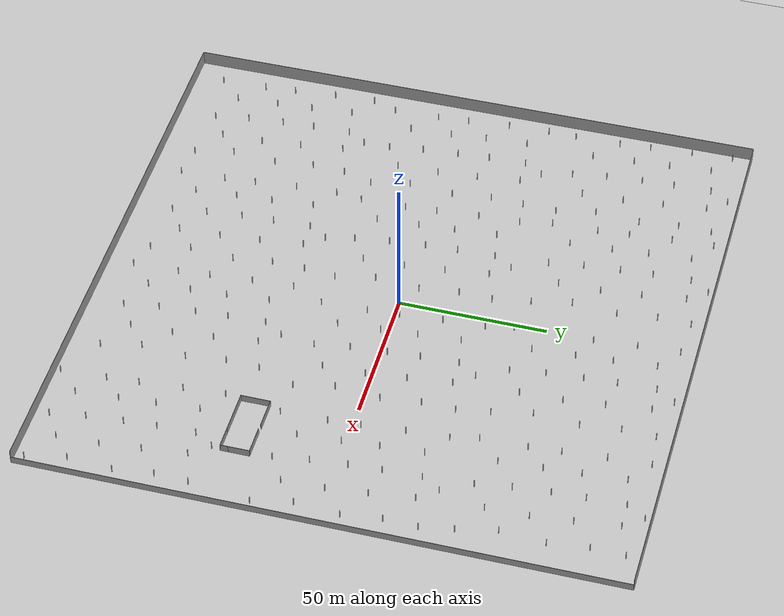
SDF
<sdf version="1.6">
 <world name="default">
  <light name="sun" type="directional">
   <pose>0 0 10 0 -0 0</pose>
   <diffuse>0.8 0.8 0.8 1</diffuse>
   <specular>0.2 0.2 0.2 1</specular>
   <attenuation>
    <range>1000</range>
    <constant>0.9</constant>
    <linear>0.01</linear>
    <quadratic>0.001</quadratic>
   </attenuation>
   <direction>-0.5 0.1 -0.9</direction>
  </light>
  <model name="ground_plane">
   <static>1</static>
   <link name="link">
    <collision name="collision">
     <geometry><plane><normal>0 0 1</normal><size>100 100</size></plane></geometry>
     <surface><friction><ode><mu>100</mu><mu2>50</mu2></ode></friction></surface>
    </collision>
    <visual name="visual">
     <cast_shadows>0</cast_shadows>
     <geometry><plane><normal>0 0 1</normal><size>100 100</size></plane></geometry>
     <material>
      <script><uri>file://media/materials/scripts/gazebo.material</uri><name>Gazebo/Grey</name></script>
     </material>
    </visual>
   </link>
  </model>
  <gravity>0 0 -9.8</gravity>
  <magnetic_field>6e-06 2.3e-05 -4.2e-05</magnetic_field>
  <atmosphere type="adiabatic"/>
  <physics name="default_physics" default="0" type="ode">
   <max_step_size>0.001</max_step_size>
   <real_time_factor>1</real_time_factor>
   <real_time_update_rate>1000</real_time_update_rate>
  </physics>
  <scene><ambient>0.4 0.4 0.4 1</ambient><background>0.7 0.7 0.7 1</background><shadows>1</shadows></scene>
  <audio><device>default</device></audio>
  <spherical_coordinates>
   <surface_model>EARTH_WGS84</surface_model>
   <latitude_deg>0</latitude_deg>
   <longitude_deg>0</longitude_deg>
   <elevation>0</elevation>
   <heading_deg>0</heading_deg>
  </spherical_coordinates>
  <model name="new_200">
   <link name="Wall_0">
    <pose>0 -100 0 0 -0 0</pose>
    <visual name="Wall_0_Visual">
     <pose>0 0 2.5 0 -0 0</pose>
     <geometry><box><size>200.15 0.15 5</size></box></geometry>
     <material>
      <script><uri>file://media/materials/scripts/gazebo.material</uri><name>Gazebo/Grey</name></script>
      <ambient>1 1 1 1</ambient>
     </material>
     <meta><layer>0</layer></meta>
    </visual>
    <collision name="Wall_0_Collision">
     <pose>0 0 2.5 0 -0 0</pose>
     <geometry><box><size>200.15 0.15 5</size></box></geometry>
     <surface>
      <friction>
       <ode><mu>1</mu><mu2>1</mu2><fdir1>0 0 0</fdir1><slip1>0</slip1><slip2>0</slip2></ode>
       <torsional>
        <coefficient>1</coefficient>
        <patch_radius>0</patch_radius>
        <surface_radius>0</surface_radius>
        <use_patch_radius>1</use_patch_radius>
        <ode><slip>0</slip></ode>
       </torsional>
      </friction>
      <bounce><restitution_coefficient>0</restitution_coefficient><threshold>1e+06</threshold></bounce>
      <contact>
       <collide_without_contact>0</collide_without_contact>
       <collide_without_contact_bitmask>1</collide_without_contact_bitmask>
       <collide_bitmask>1</collide_bitmask>
       <ode>
        <soft_cfm>0</soft_cfm>
        <soft_erp>0.2</soft_erp>
        <kp>1e+13</kp>
        <kd>1</kd>
        <max_vel>0.01</max_vel>
        <min_depth>0</min_depth>
       </ode>
       <bullet>
        <split_impulse>1</split_impulse>
        <split_impulse_penetration_threshold>-0.01</split_impulse_penetration_threshold>
        <soft_cfm>0</soft_cfm>
        <soft_erp>0.2</soft_erp>
        <kp>1e+13</kp>
        <kd>1</kd>
       </bullet>
      </contact>
     </surface>
    </collision>
   </link>
   <link name="Wall_2">
    <pose>-100 0 0 0 -0 1.5708</pose>
    <visual name="Wall_2_Visual">
     <pose>0 0 2.5 0 -0 0</pose>
     <geometry><box><size>200.15 0.15 5</size></box></geometry>
     <material>
      <script><uri>file://media/materials/scripts/gazebo.material</uri><name>Gazebo/Grey</name></script>
      <ambient>1 1 1 1</ambient>
     </material>
     <meta><layer>0</layer></meta>
    </visual>
    <collision name="Wall_2_Collision">
     <pose>0 0 2.5 0 -0 0</pose>
     <geometry><box><size>200.15 0.15 5</size></box></geometry>
     <surface>
      <friction>
       <ode><mu>1</mu><mu2>1</mu2><fdir1>0 0 0</fdir1><slip1>0</slip1><slip2>0</slip2></ode>
       <torsional>
        <coefficient>1</coefficient>
        <patch_radius>0</patch_radius>
        <surface_radius>0</surface_radius>
        <use_patch_radius>1</use_patch_radius>
        <ode><slip>0</slip></ode>
       </torsional>
      </friction>
      <bounce><restitution_coefficient>0</restitution_coefficient><threshold>1e+06</threshold></bounce>
      <contact>
       <collide_without_contact>0</collide_without_contact>
       <collide_without_contact_bitmask>1</collide_without_contact_bitmask>
       <collide_bitmask>1</collide_bitmask>
       <ode>
        <soft_cfm>0</soft_cfm>
        <soft_erp>0.2</soft_erp>
        <kp>1e+13</kp>
        <kd>1</kd>
        <max_vel>0.01</max_vel>
        <min_depth>0</min_depth>
       </ode>
       <bullet>
        <split_impulse>1</split_impulse>
        <split_impulse_penetration_threshold>-0.01</split_impulse_penetration_threshold>
        <soft_cfm>0</soft_cfm>
        <soft_erp>0.2</soft_erp>
        <kp>1e+13</kp>
        <kd>1</kd>
       </bullet>
      </contact>
     </surface>
    </collision>
   </link>
   <link name="Wall_4">
    <pose>0 100 0 0 -0 0</pose>
    <visual name="Wall_4_Visual">
     <pose>0 0 2.5 0 -0 0</pose>
     <geometry><box><size>200.15 0.15 5</size></box></geometry>
     <material>
      <script><uri>file://media/materials/scripts/gazebo.material</uri><name>Gazebo/Grey</name></script>
      <ambient>1 1 1 1</ambient>
     </material>
     <meta><layer>0</layer></meta>
    </visual>
    <collision name="Wall_4_Collision">
     <pose>0 0 2.5 0 -0 0</pose>
     <geometry><box><size>200.15 0.15 5</size></box></geometry>
     <surface>
      <friction>
       <ode><mu>1</mu><mu2>1</mu2><fdir1>0 0 0</fdir1><slip1>0</slip1><slip2>0</slip2></ode>
       <torsional>
        <coefficient>1</coefficient>
        <patch_radius>0</patch_radius>
        <surface_radius>0</surface_radius>
        <use_patch_radius>1</use_patch_radius>
        <ode><slip>0</slip></ode>
       </torsional>
      </friction>
      <bounce><restitution_coefficient>0</restitution_coefficient><threshold>1e+06</threshold></bounce>
      <contact>
       <collide_without_contact>0</collide_without_contact>
       <collide_without_contact_bitmask>1</collide_without_contact_bitmask>
       <collide_bitmask>1</collide_bitmask>
       <ode>
        <soft_cfm>0</soft_cfm>
        <soft_erp>0.2</soft_erp>
        <kp>1e+13</kp>
        <kd>1</kd>
        <max_vel>0.01</max_vel>
        <min_depth>0</min_depth>
       </ode>
       <bullet>
        <split_impulse>1</split_impulse>
        <split_impulse_penetration_threshold>-0.01</split_impulse_penetration_threshold>
        <soft_cfm>0</soft_cfm>
        <soft_erp>0.2</soft_erp>
        <kp>1e+13</kp>
        <kd>1</kd>
       </bullet>
      </contact>
     </surface>
    </collision>
   </link>
   <link name="Wall_6">
    <pose>100 0 0 0 -0 1.5708</pose>
    <visual name="Wall_6_Visual">
     <pose>0 0 1.25 0 -0 0</pose>
     <geometry><box><size>200.15 0.15 2.5</size></box></geometry>
     <material>
      <script><uri>file://media/materials/scripts/gazebo.material</uri><name>Gazebo/Grey</name></script>
      <ambient>1 1 1 1</ambient>
     </material>
     <meta><layer>0</layer></meta>
    </visual>
    <collision name="Wall_6_Collision">
     <pose>0 0 1.25 0 -0 0</pose>
     <geometry><box><size>200.15 0.15 2.5</size></box></geometry>
     <surface>
      <friction>
       <ode><mu>1</mu><mu2>1</mu2><fdir1>0 0 0</fdir1><slip1>0</slip1><slip2>0</slip2></ode>
       <torsional>
        <coefficient>1</coefficient>
        <patch_radius>0</patch_radius>
        <surface_radius>0</surface_radius>
        <use_patch_radius>1</use_patch_radius>
        <ode><slip>0</slip></ode>
       </torsional>
      </friction>
      <bounce><restitution_coefficient>0</restitution_coefficient><threshold>1e+06</threshold></bounce>
      <contact>
       <collide_without_contact>0</collide_without_contact>
       <collide_without_contact_bitmask>1</collide_without_contact_bitmask>
       <collide_bitmask>1</collide_bitmask>
       <ode>
        <soft_cfm>0</soft_cfm>
        <soft_erp>0.2</soft_erp>
        <kp>1e+13</kp>
        <kd>1</kd>
        <max_vel>0.01</max_vel>
        <min_depth>0</min_depth>
       </ode>
       <bullet>
        <split_impulse>1</split_impulse>
        <split_impulse_penetration_threshold>-0.01</split_impulse_penetration_threshold>
        <soft_cfm>0</soft_cfm>
        <soft_erp>0.2</soft_erp>
        <kp>1e+13</kp>
        <kd>1</kd>
       </bullet>
      </contact>
     </surface>
    </collision>
   </link>
   <static>1</static>
   <pose>-0.013909 0.3592 0 0 -0 0</pose>
  </model>
  <model name="SparsePillars">
   <link name="up">
    <visual name="visual">
     <geometry>
      <mesh><uri>file:///home/huiyulin/model_editor_models/SparsePillars/SparsePillars.dae</uri></mesh>
     </geometry>
    </visual>
   </link>
   <static>1</static>
   <pose>-74.4596 62.3683 -1.5 0 -0 0</pose>
  </model>
  <model name="SparsePillars_clone">
   <link name="up">
    <visual name="visual">
     <geometry>
      <mesh><uri>file:///home/huiyulin/model_editor_models/SparsePillars/SparsePillars.dae</uri></mesh>
     </geometry>
    </visual>
   </link>
   <static>1</static>
   <pose>-29.5771 64.2697 -1.5 0 -0 0</pose>
  </model>
  <model name="SparsePillars_clone_1">
   <link name="up">
    <visual name="visual">
     <geometry>
      <mesh><uri>file:///home/huiyulin/model_editor_models/SparsePillars/SparsePillars.dae</uri></mesh>
     </geometry>
    </visual>
   </link>
   <static>1</static>
   <pose>72.8376 64.1724 -1.5 0 -0 0</pose>
  </model>
  <model name="SparsePillars_clone_0">
   <link name="up">
    <visual name="visual">
     <geometry>
      <mesh><uri>file:///home/huiyulin/model_editor_models/SparsePillars/SparsePillars.dae</uri></mesh>
     </geometry>
    </visual>
   </link>
   <static>1</static>
   <pose>22.3031 63.2582 -1.5 0 -0 0</pose>
  </model>
  <model name="SparsePillars_clone_2">
   <link name="up">
    <visual name="visual">
     <geometry>
      <mesh><uri>file:///home/huiyulin/model_editor_models/SparsePillars/SparsePillars.dae</uri></mesh>
     </geometry>
    </visual>
   </link>
   <static>1</static>
   <pose>-71.6473 -2.49189 -1.5 0 -0 0</pose>
  </model>
  <model name="SparsePillars_clone_3">
   <link name="up">
    <visual name="visual">
     <geometry>
      <mesh><uri>file:///home/huiyulin/model_editor_models/SparsePillars/SparsePillars.dae</uri></mesh>
     </geometry>
    </visual>
   </link>
   <static>1</static>
   <pose>-24.083 -1.76432 -1.5 0 -0 0</pose>
  </model>
  <model name="SparsePillars_clone_4">
   <link name="up">
    <visual name="visual">
     <geometry>
      <mesh><uri>file:///home/huiyulin/model_editor_models/SparsePillars/SparsePillars.dae</uri></mesh>
     </geometry>
    </visual>
   </link>
   <static>1</static>
   <pose>78.1558 -0.138022 -1.5 0 -0 0</pose>
  </model>
  <model name="SparsePillars_clone_5">
   <link name="up">
    <visual name="visual">
     <geometry>
      <mesh><uri>file:///home/huiyulin/model_editor_models/SparsePillars/SparsePillars.dae</uri></mesh>
     </geometry>
    </visual>
   </link>
   <static>1</static>
   <pose>-71.4805 -66.0402 -1.5 0 -0 0</pose>
  </model>
  <model name="SparsePillars_clone_6">
   <link name="up">
    <visual name="visual">
     <geometry>
      <mesh><uri>file:///home/huiyulin/model_editor_models/SparsePillars/SparsePillars.dae</uri></mesh>
     </geometry>
    </visual>
   </link>
   <static>1</static>
   <pose>-21.9548 -65.8817 -1.5 0 -0 0</pose>
  </model>
  <model name="SparsePillars_clone_7">
   <link name="up">
    <visual name="visual">
     <geometry>
      <mesh><uri>file:///home/huiyulin/model_editor_models/SparsePillars/SparsePillars.dae</uri></mesh>
     </geometry>
    </visual>
   </link>
   <static>1</static>
   <pose>25.8367 -67.1681 -1.5 0 -0 0</pose>
  </model>
  <model name="SparsePillars_clone_4_clone">
   <link name="up">
    <visual name="visual">
     <geometry>
      <mesh><uri>file:///home/huiyulin/model_editor_models/SparsePillars/SparsePillars.dae</uri></mesh>
     </geometry>
    </visual>
   </link>
   <static>1</static>
   <pose>27.3483 -1.1444 -1.5 0 -0 0</pose>
  </model>
  <model name="Cangku">
   <pose>66.9205 -32.6385 0 0 -0 0</pose>
   <link name="Wall_0">
    <collision name="Wall_0_Collision">
     <geometry><box><size>15 0.15 2.5</size></box></geometry>
     <pose>0 0 1.25 0 -0 0</pose>
    </collision>
    <visual name="Wall_0_Visual">
     <pose>0 0 1.25 0 -0 0</pose>
     <geometry><box><size>15 0.15 2.5</size></box></geometry>
     <material>
      <script><uri>file://media/materials/scripts/gazebo.material</uri><name>Gazebo/Grey</name></script>
      <ambient>1 1 1 1</ambient>
     </material>
     <meta><layer>0</layer></meta>
    </visual>
    <pose>-3.675 -4.925 0 0 -0 0</pose>
   </link>
   <link name="Wall_1">
    <collision name="Wall_1_Collision">
     <geometry><box><size>7.5 0.15 2.5</size></box></geometry>
     <pose>0 0 1.25 0 -0 0</pose>
    </collision>
    <visual name="Wall_1_Visual">
     <pose>0 0 1.25 0 -0 0</pose>
     <geometry><box><size>7.5 0.15 2.5</size></box></geometry>
     <material>
      <script><uri>file://media/materials/scripts/gazebo.material</uri><name>Gazebo/Grey</name></script>
      <ambient>1 1 1 1</ambient>
     </material>
     <meta><layer>0</layer></meta>
    </visual>
    <pose>7.425 -4.925 0 0 -0 0</pose>
   </link>
   <link name="Wall_10">
    <collision name="Wall_10_Collision">
     <geometry><box><size>0.15 0.15 2.5</size></box></geometry>
     <pose>0 0 1.25 0 -0 0</pose>
    </collision>
    <visual name="Wall_10_Visual">
     <pose>0 0 1.25 0 -0 0</pose>
     <geometry><box><size>0.15 0.15 2.5</size></box></geometry>
     <material>
      <script><uri>file://media/materials/scripts/gazebo.material</uri><name>Gazebo/Grey</name></script>
      <ambient>1 1 1 1</ambient>
     </material>
     <meta><layer>0</layer></meta>
    </visual>
    <pose>-11.1 4.675 0 0 -0 0</pose>
   </link>
   <link name="Wall_11">
    <collision name="Wall_11_Collision">
     <geometry><box><size>0.15 0.15 2.5</size></box></geometry>
     <pose>0 0 1.25 0 -0 0</pose>
    </collision>
    <visual name="Wall_11_Visual">
     <pose>0 0 1.25 0 -0 0</pose>
     <geometry><box><size>0.15 0.15 2.5</size></box></geometry>
     <material>
      <script><uri>file://media/materials/scripts/gazebo.material</uri><name>Gazebo/Grey</name></script>
      <ambient>1 1 1 1</ambient>
     </material>
     <meta><layer>0</layer></meta>
    </visual>
    <pose>-11.1 4.675 0 0 -0 0</pose>
   </link>
   <link name="Wall_12">
    <collision name="Wall_12_Collision">
     <geometry><box><size>0.15 0.15 2.5</size></box></geometry>
     <pose>0 0 1.25 0 -0 0</pose>
    </collision>
    <visual name="Wall_12_Visual">
     <pose>0 0 1.25 0 -0 0</pose>
     <geometry><box><size>0.15 0.15 2.5</size></box></geometry>
     <material>
      <script><uri>file://media/materials/scripts/gazebo.material</uri><name>Gazebo/Grey</name></script>
      <ambient>1 1 1 1</ambient>
     </material>
     <meta><layer>0</layer></meta>
    </visual>
    <pose>-11.1 4.675 0 0 -0 0</pose>
   </link>
   <link name="Wall_14">
    <collision name="Wall_14_Collision">
     <geometry><box><size>10 0.15 2.5</size></box></geometry>
     <pose>0 0 1.25 0 -0 0</pose>
    </collision>
    <visual name="Wall_14_Visual">
     <pose>0 0 1.25 0 -0 0</pose>
     <geometry><box><size>10 0.15 2.5</size></box></geometry>
     <material>
      <script><uri>file://media/materials/scripts/gazebo.material</uri><name>Gazebo/Grey</name></script>
      <ambient>1 1 1 1</ambient>
     </material>
     <meta><layer>0</layer></meta>
    </visual>
    <pose>-11.1 -0 0 0 -0 1.5708</pose>
   </link>
   <link name="Wall_2">
    <collision name="Wall_2_Collision">
     <geometry><box><size>2.75 0.15 2.5</size></box></geometry>
     <pose>0 0 1.25 0 -0 0</pose>
    </collision>
    <visual name="Wall_2_Visual">
     <pose>0 0 1.25 0 -0 0</pose>
     <geometry><box><size>2.75 0.15 2.5</size></box></geometry>
     <material>
      <script><uri>file://media/materials/scripts/gazebo.material</uri><name>Gazebo/Grey</name></script>
      <ambient>1 1 1 1</ambient>
     </material>
     <meta><layer>0</layer></meta>
    </visual>
    <pose>11.1 -3.625 0 0 -0 1.5708</pose>
   </link>
   <link name="Wall_21">
    <collision name="Wall_21_Collision">
     <geometry><box><size>7.25 0.15 2.5</size></box></geometry>
     <pose>0 0 1.25 0 -0 0</pose>
    </collision>
    <visual name="Wall_21_Visual">
     <pose>0 0 1.25 0 -0 0</pose>
     <geometry><box><size>7.25 0.15 2.5</size></box></geometry>
     <material>
      <script><uri>file://media/materials/scripts/gazebo.material</uri><name>Gazebo/Grey</name></script>
      <ambient>1 1 1 1</ambient>
     </material>
     <meta><layer>0</layer></meta>
    </visual>
    <pose>11.1 1.225 0 0 -0 1.5708</pose>
   </link>
   <link name="Wall_22">
    <collision name="Wall_22_Collision">
     <geometry><box><size>10 0.15 2.5</size></box></geometry>
     <pose>0 0 1.25 0 -0 0</pose>
    </collision>
    <visual name="Wall_22_Visual">
     <pose>0 0 1.25 0 -0 0</pose>
     <geometry><box><size>10 0.15 2.5</size></box></geometry>
     <material>
      <script><uri>file://media/materials/scripts/gazebo.material</uri><name>Gazebo/Grey</name></script>
      <ambient>1 1 1 1</ambient>
     </material>
     <meta><layer>0</layer></meta>
    </visual>
    <pose>6.175 4.775 0 0 -0 3.14159</pose>
   </link>
   <link name="Wall_24">
    <collision name="Wall_24_Collision">
     <geometry><box><size>10.5 0.15 2.5</size></box></geometry>
     <pose>0 0 1.25 0 -0 0</pose>
    </collision>
    <visual name="Wall_24_Visual">
     <pose>0 0 1.25 0 -0 0</pose>
     <geometry><box><size>10.5 0.15 2.5</size></box></geometry>
     <material>
      <script><uri>file://media/materials/scripts/gazebo.material</uri><name>Gazebo/Grey</name></script>
      <ambient>1 1 1 1</ambient>
     </material>
     <meta><layer>0</layer></meta>
    </visual>
    <pose>-5.925 4.925 0 0 -0 0</pose>
   </link>
   <link name="Wall_9">
    <collision name="Wall_9_Collision">
     <geometry><box><size>0.15 0.15 2.5</size></box></geometry>
     <pose>0 0 1.25 0 -0 0</pose>
    </collision>
    <visual name="Wall_9_Visual">
     <pose>0 0 1.25 0 -0 0</pose>
     <geometry><box><size>0.15 0.15 2.5</size></box></geometry>
     <material>
      <script><uri>file://media/materials/scripts/gazebo.material</uri><name>Gazebo/Grey</name></script>
      <ambient>1 1 1 1</ambient>
     </material>
     <meta><layer>0</layer></meta>
    </visual>
    <pose>-11.1 4.675 0 0 -0 0</pose>
   </link>
   <static>1</static>
  </model>
  <model name="SparsePillars_clone_4_clone_0">
   <link name="up">
    <visual name="visual">
     <geometry>
      <mesh><uri>file:///home/huiyulin/model_editor_models/SparsePillars/SparsePillars.dae</uri></mesh>
     </geometry>
    </visual>
   </link>
   <static>1</static>
   <pose>78.6768 -74.293 -1.5 0 -0 0</pose>
  </model>
 </world>
</sdf>
